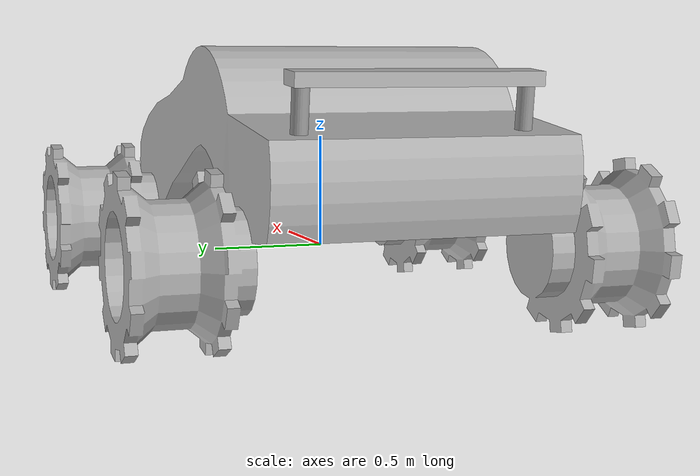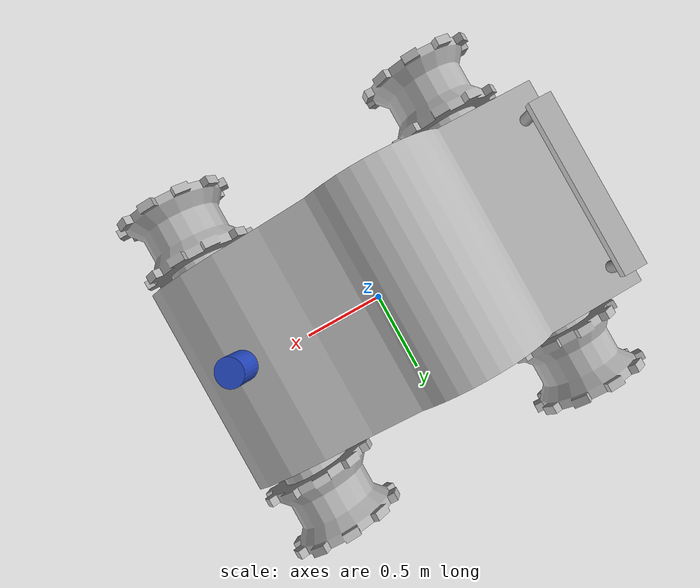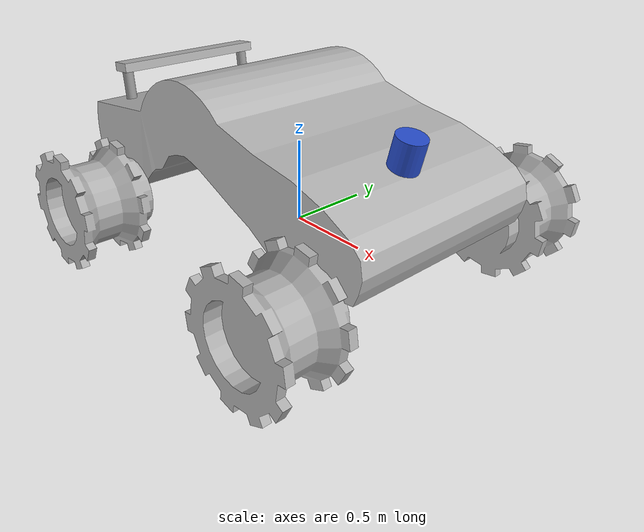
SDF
<?xml version='1.0'?>
<sdf version='1.7'>
  <model name='rover_lidar'>
    <link name='Body'>
      <inertial>
        <mass>20</mass>
        <inertia>
          <ixx>3.22227</ixx>
          <ixy>0</ixy>
          <ixz>0</ixz>
          <iyy>3.22227</iyy>
          <iyz>0</iyz>
          <izz>3.22227</izz>
        </inertia>
        <pose>0 0 0 0 -0 0</pose>
      </inertial>
      <pose>0 0 0.5 0 -0 0</pose>
      <gravity>1</gravity>
      <self_collide>0</self_collide>
      <kinematic>0</kinematic>
      <enable_wind>0</enable_wind>
      <sensor name='sensor_ray' type='ray'>
        <pose>1 0 0.3 0 -0 0</pose>
        <ray>
          <scan>
            <horizontal>
              <samples>200</samples>
              <resolution>1</resolution>
              <min_angle>-1</min_angle>
              <max_angle>1</max_angle>
            </horizontal>
            <vertical>
              <samples>1</samples>
              <min_angle>0</min_angle>
              <max_angle>0</max_angle>
            </vertical>
          </scan>
          <range>
            <min>0.05</min>
            <max>10</max>
          </range>
        </ray>
        <always_on>1</always_on>
        <visualize>1</visualize>
        <update_rate>100</update_rate>
        <plugin name='laser' filename='libgazebo_ros_ray_sensor.so'>
          <ros>
            <namespace>/rover_5k</namespace>
            <remapping>~/out:=laser_scan</remapping>
          </ros>
          <output_type>sensor_msgs/LaserScan</output_type>
        </plugin>
      </sensor>
      <visual name='visual'>
        <pose>0 0 -0.7 0 0 -1.5707</pose>
        <geometry>
          <mesh>
            <uri>/home/user/ros2_ws/src/rover_5k/model/rover/dae/body.dae</uri>
            <scale>0.5 0.5 0.5</scale>
          </mesh>
        </geometry>
        <material>
          <script>
            <uri>model://rover/materials/scripts</uri>
            <uri>model://rover/materials/textures</uri>
            <name>rover/surface</name>
          </script>
        </material>
      </visual>
      <collision name='collision'>
        <laser_retro>0</laser_retro>
        <max_contacts>10</max_contacts>
        <pose>0 0 -0.7 0 0 -1.5707</pose>
        <geometry>
          <mesh>
            <uri>/home/user/ros2_ws/src/rover_5k/model/rover/dae/body.dae</uri>
            <scale>0.5 0.5 0.5</scale>
          </mesh>
        </geometry>
        <surface>
          <friction>
            <ode>
              <mu>1</mu>
              <mu2>1</mu2>
              <fdir1>0 0 0</fdir1>
              <slip1>0</slip1>
              <slip2>0</slip2>
            </ode>
            <torsional>
              <coefficient>1</coefficient>
              <patch_radius>0</patch_radius>
              <surface_radius>0</surface_radius>
              <use_patch_radius>1</use_patch_radius>
              <ode>
                <slip>0</slip>
              </ode>
            </torsional>
          </friction>
          <bounce>
            <restitution_coefficient>0</restitution_coefficient>
            <threshold>1e+06</threshold>
          </bounce>
          <contact>
            <collide_without_contact>0</collide_without_contact>
            <collide_without_contact_bitmask>1</collide_without_contact_bitmask>
            <collide_bitmask>1</collide_bitmask>
            <ode>
              <soft_cfm>0</soft_cfm>
              <soft_erp>0.2</soft_erp>
              <kp>1e+13</kp>
              <kd>1</kd>
              <max_vel>0.01</max_vel>
              <min_depth>0</min_depth>
            </ode>
            <bullet>
              <split_impulse>1</split_impulse>
              <split_impulse_penetration_threshold>-0.01</split_impulse_penetration_threshold>
              <soft_cfm>0</soft_cfm>
              <soft_erp>0.2</soft_erp>
              <kp>1e+13</kp>
              <kd>1</kd>
            </bullet>
          </contact>
        </surface>
      </collision>
    </link>
    <link name='Bar'>
      <inertial>
        <mass>0.00763188</mass>
        <inertia>
          <ixx>0.000638094</ixx>
          <ixy>0</ixy>
          <ixz>0</ixz>
          <iyy>1.33016e-05</iyy>
          <iyz>0</iyz>
          <izz>0.000647187</izz>
        </inertia>
        <pose>0 0 0 0 -0 0</pose>
      </inertial>
      <pose>-1.20237 0.020377 0.781497 0 -0.085775 0</pose>
      <self_collide>0</self_collide>
      <enable_wind>0</enable_wind>
      <kinematic>0</kinematic>
      <visual name='visual'>
        <pose>0 0 0 0 -0 0</pose>
        <geometry>
          <box>
            <size>0.132686 1 0.057526</size>
          </box>
        </geometry>
        <material>
          <script>
            <uri>model://rover/materials/scripts</uri>
            <uri>model://rover/materials/textures</uri>
            <name>rover/bar</name>
          </script>
        </material>
      </visual>
      <collision name='collision'>
        <laser_retro>0</laser_retro>
        <max_contacts>10</max_contacts>
        <pose>0 0 0 0 -0 0</pose>
        <geometry>
          <box>
            <size>0.132686 1 0.057526</size>
          </box>
        </geometry>
        <surface>
          <friction>
            <ode>
              <mu>1</mu>
              <mu2>1</mu2>
              <fdir1>0 0 0</fdir1>
              <slip1>0</slip1>
              <slip2>0</slip2>
            </ode>
            <torsional>
              <coefficient>1</coefficient>
              <patch_radius>0</patch_radius>
              <surface_radius>0</surface_radius>
              <use_patch_radius>1</use_patch_radius>
              <ode>
                <slip>0</slip>
              </ode>
            </torsional>
          </friction>
          <bounce>
            <restitution_coefficient>0</restitution_coefficient>
            <threshold>1e+06</threshold>
          </bounce>
          <contact>
            <collide_without_contact>0</collide_without_contact>
            <collide_without_contact_bitmask>1</collide_without_contact_bitmask>
            <collide_bitmask>1</collide_bitmask>
            <ode>
              <soft_cfm>0</soft_cfm>
              <soft_erp>0.2</soft_erp>
              <kp>1e+13</kp>
              <kd>1</kd>
              <max_vel>0.01</max_vel>
              <min_depth>0</min_depth>
            </ode>
            <bullet>
              <split_impulse>1</split_impulse>
              <split_impulse_penetration_threshold>-0.01</split_impulse_penetration_threshold>
              <soft_cfm>0</soft_cfm>
              <soft_erp>0.2</soft_erp>
              <kp>1e+13</kp>
              <kd>1</kd>
            </bullet>
          </contact>
        </surface>
      </collision>
    </link>
    <link name='FL_Wheel'>
      <inertial>
        <mass>1</mass>
        <inertia>
          <ixx>0.166667</ixx>
          <ixy>0</ixy>
          <ixz>0</ixz>
          <iyy>0.166667</iyy>
          <iyz>0</iyz>
          <izz>0.166667</izz>
        </inertia>
        <pose>0 0 0 0 -0 0</pose>
      </inertial>
      <pose>0.837358 0.924069 0.073926 3.14 -0 0</pose>
      <gravity>1</gravity>
      <self_collide>0</self_collide>
      <kinematic>0</kinematic>
      <enable_wind>0</enable_wind>
      <visual name='visual'>
        <pose>0 0 -0.3 0 -0 0</pose>
        <geometry>
          <mesh>
            <uri>/home/user/ros2_ws/src/rover_5k/model/rover/dae/gearwheel.dae</uri>
            <scale>0.5 0.5 0.5</scale>
          </mesh>
        </geometry>
        <material>
          <lighting>1</lighting>
          <script>
            <uri>file://media/materials/scripts/gazebo.material</uri>
            <name>Gazebo/Motorway</name>
          </script>
          <shader type='pixel'>
            <normal_map>__default__</normal_map>
          </shader>
          <ambient>0.3 0.3 0.3 1</ambient>
          <diffuse>0.7 0.7 0.7 1</diffuse>
          <specular>0.01 0.01 0.01 1</specular>
          <emissive>0 0 0 1</emissive>
        </material>
        <transparency>0</transparency>
        <cast_shadows>1</cast_shadows>
      </visual>
      <collision name='collision'>
        <laser_retro>0</laser_retro>
        <max_contacts>10</max_contacts>
        <pose>0 0 -0.3 0 -0 0</pose>
        <geometry>
          <mesh>
            <uri>/home/user/ros2_ws/src/rover_5k/model/rover/dae/gearwheel.dae</uri>
            <scale>0.5 0.5 0.5</scale>
          </mesh>
        </geometry>
        <surface>
          <friction>
            <ode>
              <mu>1</mu>
              <mu2>1</mu2>
              <fdir1>0 0 0</fdir1>
              <slip1>0</slip1>
              <slip2>0</slip2>
            </ode>
            <torsional>
              <coefficient>1</coefficient>
              <patch_radius>0</patch_radius>
              <surface_radius>0</surface_radius>
              <use_patch_radius>1</use_patch_radius>
              <ode>
                <slip>0</slip>
              </ode>
            </torsional>
          </friction>
          <bounce>
            <restitution_coefficient>0</restitution_coefficient>
            <threshold>1e+06</threshold>
          </bounce>
          <contact>
            <collide_without_contact>0</collide_without_contact>
            <collide_without_contact_bitmask>1</collide_without_contact_bitmask>
            <collide_bitmask>1</collide_bitmask>
            <ode>
              <soft_cfm>0</soft_cfm>
              <soft_erp>0.2</soft_erp>
              <kp>1e+13</kp>
              <kd>1</kd>
              <max_vel>0.01</max_vel>
              <min_depth>0</min_depth>
            </ode>
            <bullet>
              <split_impulse>1</split_impulse>
              <split_impulse_penetration_threshold>-0.01</split_impulse_penetration_threshold>
              <soft_cfm>0</soft_cfm>
              <soft_erp>0.2</soft_erp>
              <kp>1e+13</kp>
              <kd>1</kd>
            </bullet>
          </contact>
        </surface>
      </collision>
    </link>
    <link name='FR_Wheel'>
      <inertial>
        <mass>1</mass>
        <inertia>
          <ixx>0.166667</ixx>
          <ixy>0</ixy>
          <ixz>0</ixz>
          <iyy>0.166667</iyy>
          <iyz>0</iyz>
          <izz>0.166667</izz>
        </inertia>
        <pose>0 0 0 0 -0 0</pose>
      </inertial>
      <pose>0.837358 -0.911499 0.074126 0 -0 0</pose>
      <gravity>1</gravity>
      <self_collide>0</self_collide>
      <kinematic>0</kinematic>
      <enable_wind>0</enable_wind>
      <visual name='visual'>
        <pose>0 0 -0.3 0 -0 0</pose>
        <geometry>
          <mesh>
            <uri>/home/user/ros2_ws/src/rover_5k/model/rover/dae/gearwheel.dae</uri>
            <scale>0.5 0.5 0.5</scale>
          </mesh>
        </geometry>
        <material>
          <lighting>1</lighting>
          <script>
            <uri>file://media/materials/scripts/gazebo.material</uri>
            <name>Gazebo/Motorway</name>
          </script>
          <shader type='pixel'>
            <normal_map>__default__</normal_map>
          </shader>
          <ambient>0.3 0.3 0.3 1</ambient>
          <diffuse>0.7 0.7 0.7 1</diffuse>
          <specular>0.01 0.01 0.01 1</specular>
          <emissive>0 0 0 1</emissive>
        </material>
        <transparency>0</transparency>
        <cast_shadows>1</cast_shadows>
      </visual>
      <collision name='collision'>
        <laser_retro>0</laser_retro>
        <max_contacts>10</max_contacts>
        <pose>0 0 -0.3 0 -0 0</pose>
        <geometry>
          <mesh>
            <uri>/home/user/ros2_ws/src/rover_5k/model/rover/dae/gearwheel.dae</uri>
            <scale>0.5 0.5 0.5</scale>
          </mesh>
        </geometry>
        <surface>
          <friction>
            <ode>
              <mu>1</mu>
              <mu2>1</mu2>
              <fdir1>0 0 0</fdir1>
              <slip1>0</slip1>
              <slip2>0</slip2>
            </ode>
            <torsional>
              <coefficient>1</coefficient>
              <patch_radius>0</patch_radius>
              <surface_radius>0</surface_radius>
              <use_patch_radius>1</use_patch_radius>
              <ode>
                <slip>0</slip>
              </ode>
            </torsional>
          </friction>
          <bounce>
            <restitution_coefficient>0</restitution_coefficient>
            <threshold>1e+06</threshold>
          </bounce>
          <contact>
            <collide_without_contact>0</collide_without_contact>
            <collide_without_contact_bitmask>1</collide_without_contact_bitmask>
            <collide_bitmask>1</collide_bitmask>
            <ode>
              <soft_cfm>0</soft_cfm>
              <soft_erp>0.2</soft_erp>
              <kp>1e+13</kp>
              <kd>1</kd>
              <max_vel>0.01</max_vel>
              <min_depth>0</min_depth>
            </ode>
            <bullet>
              <split_impulse>1</split_impulse>
              <split_impulse_penetration_threshold>-0.01</split_impulse_penetration_threshold>
              <soft_cfm>0</soft_cfm>
              <soft_erp>0.2</soft_erp>
              <kp>1e+13</kp>
              <kd>1</kd>
            </bullet>
          </contact>
        </surface>
      </collision>
    </link>
    <link name='Lidar'>
      <inertial>
        <mass>0.00551611</mass>
        <inertia>
          <ixx>2.62879e-05</ixx>
          <ixy>0</ixy>
          <ixz>0</ixz>
          <iyy>2.62879e-05</iyy>
          <iyz>0</iyz>
          <izz>2.02995e-05</izz>
        </inertia>
        <pose>0 0 0 0 -0 0</pose>
      </inertial>
      <pose>0.829309 -0.028562 0.677019 0 0.248688 0</pose>
      <self_collide>0</self_collide>
      <enable_wind>0</enable_wind>
      <kinematic>0</kinematic>
      <visual name='visual'>
        <pose>0 0 0 0 -0 0</pose>
        <geometry>
          <cylinder>
            <radius>0.0857912</radius>
            <length>0.18737</length>
          </cylinder>
        </geometry>
        <material>
          <lighting>1</lighting>
          <script>
            <uri>file://media/materials/scripts/gazebo.material</uri>
            <name>Gazebo/Blue</name>
          </script>
          <shader type='pixel'/>
          <emissive>0 0 0 1</emissive>
        </material>
        <transparency>0</transparency>
        <cast_shadows>1</cast_shadows>
      </visual>
      <collision name='collision'>
        <laser_retro>0</laser_retro>
        <max_contacts>10</max_contacts>
        <pose>0 0 0 0 -0 0</pose>
        <geometry>
          <cylinder>
            <radius>0.085791</radius>
            <length>0.18737</length>
          </cylinder>
        </geometry>
        <surface>
          <friction>
            <ode>
              <mu>1</mu>
              <mu2>1</mu2>
              <fdir1>0 0 0</fdir1>
              <slip1>0</slip1>
              <slip2>0</slip2>
            </ode>
            <torsional>
              <coefficient>1</coefficient>
              <patch_radius>0</patch_radius>
              <surface_radius>0</surface_radius>
              <use_patch_radius>1</use_patch_radius>
              <ode>
                <slip>0</slip>
              </ode>
            </torsional>
          </friction>
          <bounce>
            <restitution_coefficient>0</restitution_coefficient>
            <threshold>1e+06</threshold>
          </bounce>
          <contact>
            <collide_without_contact>0</collide_without_contact>
            <collide_without_contact_bitmask>1</collide_without_contact_bitmask>
            <collide_bitmask>1</collide_bitmask>
            <ode>
              <soft_cfm>0</soft_cfm>
              <soft_erp>0.2</soft_erp>
              <kp>1e+13</kp>
              <kd>1</kd>
              <max_vel>0.01</max_vel>
              <min_depth>0</min_depth>
            </ode>
            <bullet>
              <split_impulse>1</split_impulse>
              <split_impulse_penetration_threshold>-0.01</split_impulse_penetration_threshold>
              <soft_cfm>0</soft_cfm>
              <soft_erp>0.2</soft_erp>
              <kp>1e+13</kp>
              <kd>1</kd>
            </bullet>
          </contact>
        </surface>
      </collision>
    </link>
    <link name='RL_Wheel'>
      <inertial>
        <mass>1</mass>
        <inertia>
          <ixx>0.166667</ixx>
          <ixy>0</ixy>
          <ixz>0</ixz>
          <iyy>0.166667</iyy>
          <iyz>0</iyz>
          <izz>0.166667</izz>
        </inertia>
        <pose>0 0 0 0 -0 0</pose>
      </inertial>
      <pose>-0.875759 0.908026 0.073729 3.14 -0 0</pose>
      <gravity>1</gravity>
      <self_collide>0</self_collide>
      <kinematic>0</kinematic>
      <enable_wind>0</enable_wind>
      <visual name='visual'>
        <pose>0 0 -0.3 0 -0 0</pose>
        <geometry>
          <mesh>
            <uri>/home/user/ros2_ws/src/rover_5k/model/rover/dae/gearwheel.dae</uri>
            <scale>0.5 0.5 0.5</scale>
          </mesh>
        </geometry>
        <material>
          <lighting>1</lighting>
          <script>
            <uri>file://media/materials/scripts/gazebo.material</uri>
            <name>Gazebo/Motorway</name>
          </script>
          <shader type='pixel'>
            <normal_map>__default__</normal_map>
          </shader>
          <ambient>0.3 0.3 0.3 1</ambient>
          <diffuse>0.7 0.7 0.7 1</diffuse>
          <specular>0.01 0.01 0.01 1</specular>
          <emissive>0 0 0 1</emissive>
        </material>
        <transparency>0</transparency>
        <cast_shadows>1</cast_shadows>
      </visual>
      <collision name='collision'>
        <laser_retro>0</laser_retro>
        <max_contacts>10</max_contacts>
        <pose>0 0 -0.3 0 -0 0</pose>
        <geometry>
          <mesh>
            <uri>/home/user/ros2_ws/src/rover_5k/model/rover/dae/gearwheel.dae</uri>
            <scale>0.5 0.5 0.5</scale>
          </mesh>
        </geometry>
        <surface>
          <friction>
            <ode>
              <mu>1</mu>
              <mu2>1</mu2>
              <fdir1>0 0 0</fdir1>
              <slip1>0</slip1>
              <slip2>0</slip2>
            </ode>
            <torsional>
              <coefficient>1</coefficient>
              <patch_radius>0</patch_radius>
              <surface_radius>0</surface_radius>
              <use_patch_radius>1</use_patch_radius>
              <ode>
                <slip>0</slip>
              </ode>
            </torsional>
          </friction>
          <bounce>
            <restitution_coefficient>0</restitution_coefficient>
            <threshold>1e+06</threshold>
          </bounce>
          <contact>
            <collide_without_contact>0</collide_without_contact>
            <collide_without_contact_bitmask>1</collide_without_contact_bitmask>
            <collide_bitmask>1</collide_bitmask>
            <ode>
              <soft_cfm>0</soft_cfm>
              <soft_erp>0.2</soft_erp>
              <kp>1e+13</kp>
              <kd>1</kd>
              <max_vel>0.01</max_vel>
              <min_depth>0</min_depth>
            </ode>
            <bullet>
              <split_impulse>1</split_impulse>
              <split_impulse_penetration_threshold>-0.01</split_impulse_penetration_threshold>
              <soft_cfm>0</soft_cfm>
              <soft_erp>0.2</soft_erp>
              <kp>1e+13</kp>
              <kd>1</kd>
            </bullet>
          </contact>
        </surface>
      </collision>
    </link>
    <link name='RR_Wheel'>
      <inertial>
        <mass>1</mass>
        <inertia>
          <ixx>0.166667</ixx>
          <ixy>0</ixy>
          <ixz>0</ixz>
          <iyy>0.166667</iyy>
          <iyz>0</iyz>
          <izz>0.166667</izz>
        </inertia>
        <pose>0 0 0 0 -0 0</pose>
      </inertial>
      <pose>-0.875759 -0.919996 0.074126 0 -0 0</pose>
      <gravity>1</gravity>
      <self_collide>0</self_collide>
      <kinematic>0</kinematic>
      <enable_wind>0</enable_wind>
      <visual name='visual'>
        <pose>0 0 -0.3 0 -0 0</pose>
        <geometry>
          <mesh>
            <uri>/home/user/ros2_ws/src/rover_5k/model/rover/dae/gearwheel.dae</uri>
            <scale>0.5 0.5 0.5</scale>
          </mesh>
        </geometry>
        <material>
          <lighting>1</lighting>
          <script>
            <uri>file://media/materials/scripts/gazebo.material</uri>
            <name>Gazebo/Motorway</name>
          </script>
          <shader type='pixel'>
            <normal_map>__default__</normal_map>
          </shader>
          <ambient>0.3 0.3 0.3 1</ambient>
          <diffuse>0.7 0.7 0.7 1</diffuse>
          <specular>0.01 0.01 0.01 1</specular>
          <emissive>0 0 0 1</emissive>
        </material>
        <transparency>0</transparency>
        <cast_shadows>1</cast_shadows>
      </visual>
      <collision name='collision'>
        <laser_retro>0</laser_retro>
        <max_contacts>10</max_contacts>
        <pose>0 0 -0.3 0 -0 0</pose>
        <geometry>
          <mesh>
            <uri>/home/user/ros2_ws/src/rover_5k/model/rover/dae/gearwheel.dae</uri>
            <scale>0.5 0.5 0.5</scale>
          </mesh>
        </geometry>
        <surface>
          <friction>
            <ode>
              <mu>1</mu>
              <mu2>1</mu2>
              <fdir1>0 0 0</fdir1>
              <slip1>0</slip1>
              <slip2>0</slip2>
            </ode>
            <torsional>
              <coefficient>1</coefficient>
              <patch_radius>0</patch_radius>
              <surface_radius>0</surface_radius>
              <use_patch_radius>1</use_patch_radius>
              <ode>
                <slip>0</slip>
              </ode>
            </torsional>
          </friction>
          <bounce>
            <restitution_coefficient>0</restitution_coefficient>
            <threshold>1e+06</threshold>
          </bounce>
          <contact>
            <collide_without_contact>0</collide_without_contact>
            <collide_without_contact_bitmask>1</collide_without_contact_bitmask>
            <collide_bitmask>1</collide_bitmask>
            <ode>
              <soft_cfm>0</soft_cfm>
              <soft_erp>0.2</soft_erp>
              <kp>1e+13</kp>
              <kd>1</kd>
              <max_vel>0.01</max_vel>
              <min_depth>0</min_depth>
            </ode>
            <bullet>
              <split_impulse>1</split_impulse>
              <split_impulse_penetration_threshold>-0.01</split_impulse_penetration_threshold>
              <soft_cfm>0</soft_cfm>
              <soft_erp>0.2</soft_erp>
              <kp>1e+13</kp>
              <kd>1</kd>
            </bullet>
          </contact>
        </surface>
      </collision>
    </link>
    <link name='Support_LH'>
      <inertial>
        <mass>0.000898674</mass>
        <inertia>
          <ixx>3.13618e-06</ixx>
          <ixy>0</ixy>
          <ixz>0</ixz>
          <iyy>3.13618e-06</iyy>
          <iyz>0</iyz>
          <izz>5.14928e-07</izz>
        </inertia>
        <pose>0 0 0 0 -0 0</pose>
      </inertial>
      <pose>-1.19118 0.475511 0.665342 0 -0.129355 0</pose>
      <self_collide>0</self_collide>
      <enable_wind>0</enable_wind>
      <kinematic>0</kinematic>
      <visual name='visual'>
        <pose>0 0 0 0 -0 0</pose>
        <geometry>
          <cylinder>
            <radius>0.0338522</radius>
            <length>0.19606</length>
          </cylinder>
        </geometry>
        <material>
          <lighting>1</lighting>
          <script>
            <uri>file://media/materials/scripts/gazebo.material</uri>
            <name>Gazebo/Grey</name>
          </script>
          <shader type='pixel'/>
          <emissive>0 0 0 1</emissive>
        </material>
        <transparency>0</transparency>
        <cast_shadows>1</cast_shadows>
      </visual>
      <collision name='collision'>
        <laser_retro>0</laser_retro>
        <max_contacts>10</max_contacts>
        <pose>0 0 0 0 -0 0</pose>
        <geometry>
          <cylinder>
            <radius>0.033852</radius>
            <length>0.19606</length>
          </cylinder>
        </geometry>
        <surface>
          <friction>
            <ode>
              <mu>1</mu>
              <mu2>1</mu2>
              <fdir1>0 0 0</fdir1>
              <slip1>0</slip1>
              <slip2>0</slip2>
            </ode>
            <torsional>
              <coefficient>1</coefficient>
              <patch_radius>0</patch_radius>
              <surface_radius>0</surface_radius>
              <use_patch_radius>1</use_patch_radius>
              <ode>
                <slip>0</slip>
              </ode>
            </torsional>
          </friction>
          <bounce>
            <restitution_coefficient>0</restitution_coefficient>
            <threshold>1e+06</threshold>
          </bounce>
          <contact>
            <collide_without_contact>0</collide_without_contact>
            <collide_without_contact_bitmask>1</collide_without_contact_bitmask>
            <collide_bitmask>1</collide_bitmask>
            <ode>
              <soft_cfm>0</soft_cfm>
              <soft_erp>0.2</soft_erp>
              <kp>1e+13</kp>
              <kd>1</kd>
              <max_vel>0.01</max_vel>
              <min_depth>0</min_depth>
            </ode>
            <bullet>
              <split_impulse>1</split_impulse>
              <split_impulse_penetration_threshold>-0.01</split_impulse_penetration_threshold>
              <soft_cfm>0</soft_cfm>
              <soft_erp>0.2</soft_erp>
              <kp>1e+13</kp>
              <kd>1</kd>
            </bullet>
          </contact>
        </surface>
      </collision>
    </link>
    <link name='Support_RH'>
      <inertial>
        <mass>0.000898674</mass>
        <inertia>
          <ixx>3.13618e-06</ixx>
          <ixy>0</ixy>
          <ixz>0</ixz>
          <iyy>3.13618e-06</iyy>
          <iyz>0</iyz>
          <izz>5.14928e-07</izz>
        </inertia>
        <pose>0 0 0 0 -0 0</pose>
      </inertial>
      <pose>-1.1735 -0.441038 0.665342 0 -0.129355 0</pose>
      <self_collide>0</self_collide>
      <enable_wind>0</enable_wind>
      <kinematic>0</kinematic>
      <visual name='visual_0'>
        <pose>0 0 0 0 -0 0</pose>
        <geometry>
          <cylinder>
            <radius>0.0338522</radius>
            <length>0.19606</length>
          </cylinder>
        </geometry>
        <material>
          <lighting>1</lighting>
          <script>
            <uri>file://media/materials/scripts/gazebo.material</uri>
            <name>Gazebo/Grey</name>
          </script>
          <shader type='pixel'/>
          <emissive>0 0 0 1</emissive>
        </material>
        <transparency>0</transparency>
        <cast_shadows>1</cast_shadows>
      </visual>
      <collision name='collision'>
        <laser_retro>0</laser_retro>
        <max_contacts>10</max_contacts>
        <pose>0 0 0 0 -0 0</pose>
        <geometry>
          <cylinder>
            <radius>0.033852</radius>
            <length>0.19606</length>
          </cylinder>
        </geometry>
        <surface>
          <friction>
            <ode>
              <mu>1</mu>
              <mu2>1</mu2>
              <fdir1>0 0 0</fdir1>
              <slip1>0</slip1>
              <slip2>0</slip2>
            </ode>
            <torsional>
              <coefficient>1</coefficient>
              <patch_radius>0</patch_radius>
              <surface_radius>0</surface_radius>
              <use_patch_radius>1</use_patch_radius>
              <ode>
                <slip>0</slip>
              </ode>
            </torsional>
          </friction>
          <bounce>
            <restitution_coefficient>0</restitution_coefficient>
            <threshold>1e+06</threshold>
          </bounce>
          <contact>
            <collide_without_contact>0</collide_without_contact>
            <collide_without_contact_bitmask>1</collide_without_contact_bitmask>
            <collide_bitmask>1</collide_bitmask>
            <ode>
              <soft_cfm>0</soft_cfm>
              <soft_erp>0.2</soft_erp>
              <kp>1e+13</kp>
              <kd>1</kd>
              <max_vel>0.01</max_vel>
              <min_depth>0</min_depth>
            </ode>
            <bullet>
              <split_impulse>1</split_impulse>
              <split_impulse_penetration_threshold>-0.01</split_impulse_penetration_threshold>
              <soft_cfm>0</soft_cfm>
              <soft_erp>0.2</soft_erp>
              <kp>1e+13</kp>
              <kd>1</kd>
            </bullet>
          </contact>
        </surface>
      </collision>
    </link>
    <joint name='Body_Support_RH_joint' type='fixed'>
      <parent>Body</parent>
      <child>Support_RH</child>
      <pose>0 0 0 0 -0 0</pose>
      <physics>
        <ode>
          <limit>
            <cfm>0</cfm>
            <erp>0.2</erp>
          </limit>
          <suspension>
            <cfm>0</cfm>
            <erp>0.2</erp>
          </suspension>
        </ode>
      </physics>
    </joint>
    <joint name='Body_Bar_joint' type='fixed'>
      <parent>Body</parent>
      <child>Bar</child>
      <pose>0 0 0 0 -0 0</pose>
      <physics>
        <ode>
          <limit>
            <cfm>0</cfm>
            <erp>0.2</erp>
          </limit>
          <suspension>
            <cfm>0</cfm>
            <erp>0.2</erp>
          </suspension>
        </ode>
      </physics>
    </joint>
    <joint name='Body_Lidar_joint' type='fixed'>
      <parent>Body</parent>
      <child>Lidar</child>
      <pose>0 0 0 0 -0 0</pose>
      <physics>
        <ode>
          <limit>
            <cfm>0</cfm>
            <erp>0.2</erp>
          </limit>
          <suspension>
            <cfm>0</cfm>
            <erp>0.2</erp>
          </suspension>
        </ode>
      </physics>
    </joint>
    <joint name='Body_Support_LH_joint' type='fixed'>
      <parent>Body</parent>
      <child>Support_LH</child>
      <pose>0 0 0 0 -0 0</pose>
      <physics>
        <ode>
          <limit>
            <cfm>0</cfm>
            <erp>0.2</erp>
          </limit>
          <suspension>
            <cfm>0</cfm>
            <erp>0.2</erp>
          </suspension>
        </ode>
      </physics>
    </joint>
    <joint name='FL_joint' type='revolute'>
      <parent>Body</parent>
      <child>FL_Wheel</child>
      <pose>0 0 0 0 -0 0</pose>
      <axis>
        <xyz>0 -1 0</xyz>
        <limit>
          <lower>-1.79769e+308</lower>
          <upper>1.79769e+308</upper>
          <effort>-1</effort>
          <velocity>-1</velocity>
        </limit>
        <dynamics>
          <spring_reference>0</spring_reference>
          <spring_stiffness>0</spring_stiffness>
          <damping>0</damping>
          <friction>0</friction>
        </dynamics>
      </axis>
      <physics>
        <ode>
          <limit>
            <cfm>0</cfm>
            <erp>0.2</erp>
          </limit>
          <suspension>
            <cfm>0</cfm>
            <erp>0.2</erp>
          </suspension>
        </ode>
      </physics>
    </joint>
    <joint name='FR_joint' type='revolute'>
      <parent>Body</parent>
      <child>FR_Wheel</child>
      <pose>0 0 0 0 -0 0</pose>
      <axis>
        <xyz>0 1 0</xyz>
        <limit>
          <lower>-1.79769e+308</lower>
          <upper>1.79769e+308</upper>
          <effort>-1</effort>
          <velocity>-1</velocity>
        </limit>
        <dynamics>
          <spring_reference>0</spring_reference>
          <spring_stiffness>0</spring_stiffness>
          <damping>0</damping>
          <friction>0</friction>
        </dynamics>
      </axis>
      <physics>
        <ode>
          <limit>
            <cfm>0</cfm>
            <erp>0.2</erp>
          </limit>
          <suspension>
            <cfm>0</cfm>
            <erp>0.2</erp>
          </suspension>
        </ode>
      </physics>
    </joint>
    <joint name='RL_joint' type='revolute'>
      <parent>Body</parent>
      <child>RL_Wheel</child>
      <pose>0 0 0 0 -0 0</pose>
      <axis>
        <xyz>0 -1 0</xyz>
        <limit>
          <lower>-1.79769e+308</lower>
          <upper>1.79769e+308</upper>
          <effort>-1</effort>
          <velocity>-1</velocity>
        </limit>
        <dynamics>
          <spring_reference>0</spring_reference>
          <spring_stiffness>0</spring_stiffness>
          <damping>0</damping>
          <friction>0</friction>
        </dynamics>
      </axis>
      <physics>
        <ode>
          <limit>
            <cfm>0</cfm>
            <erp>0.2</erp>
          </limit>
          <suspension>
            <cfm>0</cfm>
            <erp>0.2</erp>
          </suspension>
        </ode>
      </physics>
    </joint>
    <joint name='RR_joint' type='revolute'>
      <parent>Body</parent>
      <child>RR_Wheel</child>
      <pose>0 0 0 0 -0 0</pose>
      <axis>
        <xyz>0 1 0</xyz>
        <limit>
          <lower>-1.79769e+308</lower>
          <upper>1.79769e+308</upper>
          <effort>-1</effort>
          <velocity>-1</velocity>
        </limit>
        <dynamics>
          <spring_reference>0</spring_reference>
          <spring_stiffness>0</spring_stiffness>
          <damping>0</damping>
          <friction>0</friction>
        </dynamics>
      </axis>
      <physics>
        <ode>
          <limit>
            <cfm>0</cfm>
            <erp>0.2</erp>
          </limit>
          <suspension>
            <cfm>0</cfm>
            <erp>0.2</erp>
          </suspension>
        </ode>
      </physics>
    </joint>
    <joint name='Bar_Support_LH_joint' type='fixed'>
      <parent>Support_LH</parent>
      <child>Bar</child>
      <pose>0 0 0 0 -0 0</pose>
      <physics>
        <ode>
          <limit>
            <cfm>0</cfm>
            <erp>0.2</erp>
          </limit>
          <suspension>
            <cfm>0</cfm>
            <erp>0.2</erp>
          </suspension>
        </ode>
      </physics>
    </joint>
    <joint name='Bar_Support_RH_Joint' type='fixed'>
      <parent>Support_RH</parent>
      <child>Bar</child>
      <pose>0 0 0 0 -0 0</pose>
      <physics>
        <ode>
          <limit>
            <cfm>0</cfm>
            <erp>0.2</erp>
          </limit>
          <suspension>
            <cfm>0</cfm>
            <erp>0.2</erp>
          </suspension>
        </ode>
      </physics>
    </joint>
    <static>0</static>
    <allow_auto_disable>1</allow_auto_disable>
    <plugin name='diff_front' filename='libgazebo_ros_diff_drive.so'>
      <ros>
        <namespace>/rover_5k</namespace>
      </ros>
      <left_joint>FL_joint</left_joint>
      <right_joint>FR_joint</right_joint>
      <wheel_separation>1.65</wheel_separation>
      <wheel_diameter>0.3</wheel_diameter>
      <max_wheel_torque>20</max_wheel_torque>
      <max_wheel_acceleration>1.0</max_wheel_acceleration>
      <publish_odom>1</publish_odom>
      <publish_odom_tf>1</publish_odom_tf>
      <odometry_frame>odom_demo</odometry_frame>
      <robot_base_frame>Body</robot_base_frame>
    </plugin>
    <plugin name='diff_rear' filename='libgazebo_ros_diff_drive.so'>
      <ros>
        <namespace>/rover_5k</namespace>
      </ros>
      <left_joint>RL_joint</left_joint>
      <right_joint>RR_joint</right_joint>
      <wheel_separation>1.65</wheel_separation>
      <wheel_diameter>0.3</wheel_diameter>
      <max_wheel_torque>20</max_wheel_torque>
      <max_wheel_acceleration>1.0</max_wheel_acceleration>
      <publish_odom>1</publish_odom>
      <publish_odom_tf>1</publish_odom_tf>
      <odometry_frame>odom_demo</odometry_frame>
      <robot_base_frame>Body</robot_base_frame>
    </plugin>
  </model>
</sdf>
